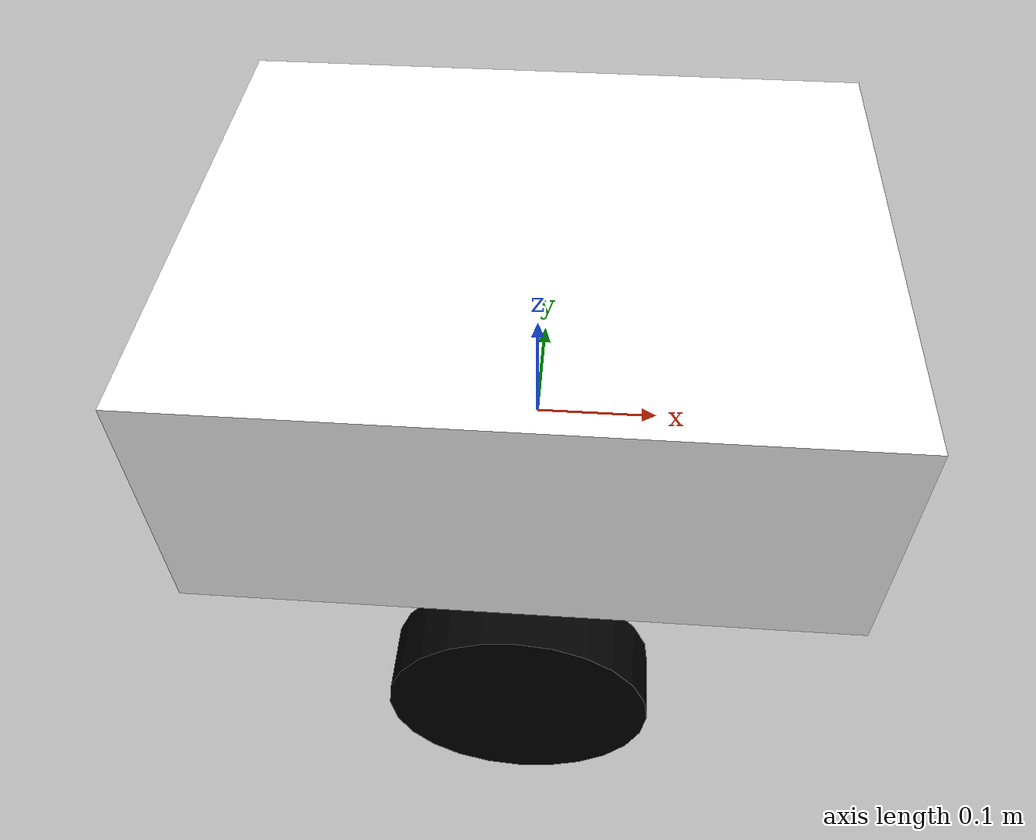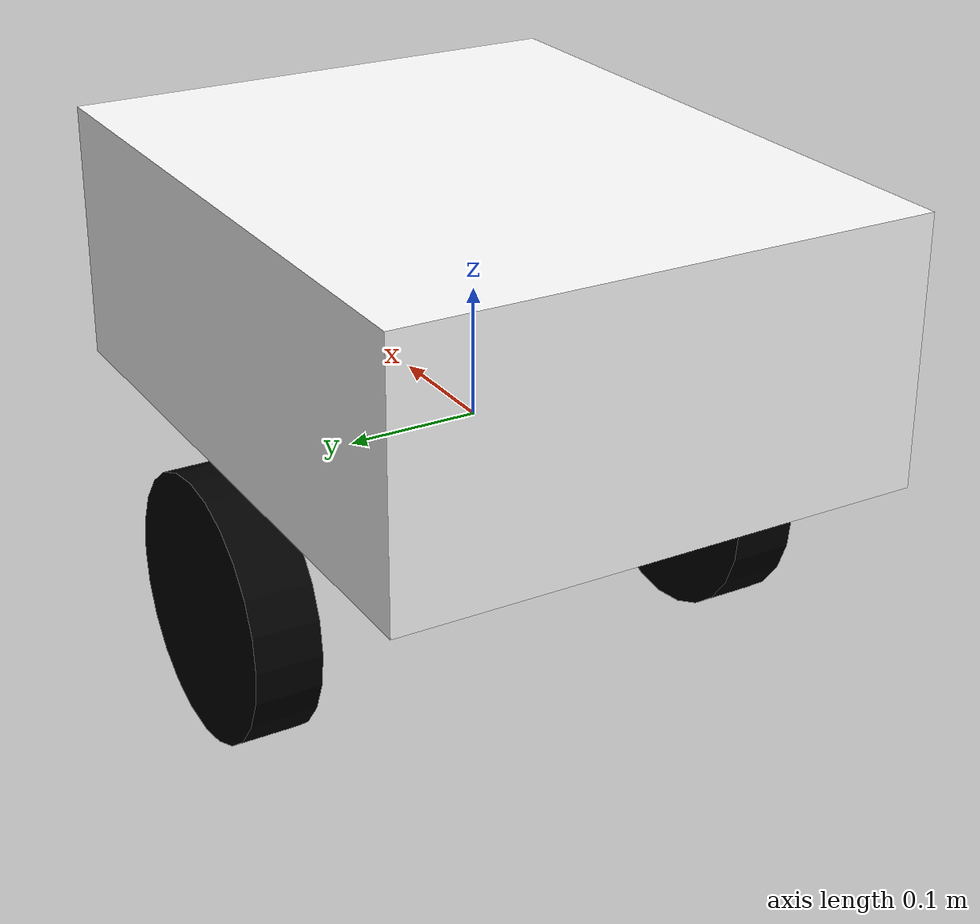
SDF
<?xml version="1.0" ?>
<sdf version="1.10">
  <model name="basic_robot">
    <link name="base_link">
      <pose>0 0 0.1 0 0 0</pose>
      <inertial>
        <mass>10.0</mass>
        <inertia>
          <ixx>0.416</ixx>
          <ixy>0</ixy>
          <ixz>0</ixz>
          <iyy>0.541</iyy>
          <iyz>0</iyz>
          <izz>0.241</izz>
        </inertia>
      </inertial>
      <visual name="visual">
        <geometry>
          <box>
            <size>0.5 0.4 0.2</size>
          </box>
        </geometry>
        <material>
          <ambient>1 1 1 1</ambient>
          <diffuse>1 1 1 1</diffuse>
        </material>
      </visual>
      <collision name="collision">
        <geometry>
          <box>
            <size>0.5 0.4 0.2</size>
          </box>
        </geometry>
      </collision>
    </link>

    <link name="left_wheel">
      <pose>0 0.2 -0.1 0 0 0</pose>
      <inertial>
        <mass>1.0</mass>
        <inertia>
          <ixx>0.005</ixx>
          <ixy>0</ixy>
          <ixz>0</ixz>
          <iyy>0.005</iyy>
          <iyz>0</iyz>
          <izz>0.01</izz>
        </inertia>
      </inertial>
      <visual name="visual">
        <geometry>
          <cylinder>
            <radius>0.1</radius>
            <length>0.05</length>
          </cylinder>
        </geometry>
        <pose>0 0 0 1.5708 0 0</pose>
        <material>
          <ambient>0 0 0 1</ambient>
          <diffuse>0 0 0 1</diffuse>
        </material>
      </visual>
      <collision name="collision">
        <geometry>
          <cylinder>
            <radius>0.1</radius>
            <length>0.05</length>
          </cylinder>
        </geometry>
        <pose>0 0 0 1.5708 0 0</pose>
      </collision>
    </link>

    <link name="right_wheel">
      <pose>0 -0.2 -0.1 0 0 0</pose>
      <inertial>
        <mass>1.0</mass>
        <inertia>
          <ixx>0.005</ixx>
          <ixy>0</ixy>
          <ixz>0</ixz>
          <iyy>0.005</iyy>
          <iyz>0</iyz>
          <izz>0.01</izz>
        </inertia>
      </inertial>
      <visual name="visual">
        <geometry>
          <cylinder>
            <radius>0.1</radius>
            <length>0.05</length>
          </cylinder>
        </geometry>
        <pose>0 0 0 1.5708 0 0</pose>
        <material>
          <ambient>0 0 0 1</ambient>
          <diffuse>0 0 0 1</diffuse>
        </material>
      </visual>
      <collision name="collision">
        <geometry>
          <cylinder>
            <radius>0.1</radius>
            <length>0.05</length>
          </cylinder>
        </geometry>
        <pose>0 0 0 1.5708 0 0</pose>
      </collision>
    </link>

    <joint name="left_wheel_joint" type="revolute">
      <parent>base_link</parent>
      <child>left_wheel</child>
      <axis>
        <xyz>0 0 1</xyz>
      </axis>
    </joint>

    <joint name="right_wheel_joint" type="revolute">
      <parent>base_link</parent>
      <child>right_wheel</child>
      <axis>
        <xyz>0 0 1</xyz>
      </axis>
    </joint>
  </model>
</sdf>
